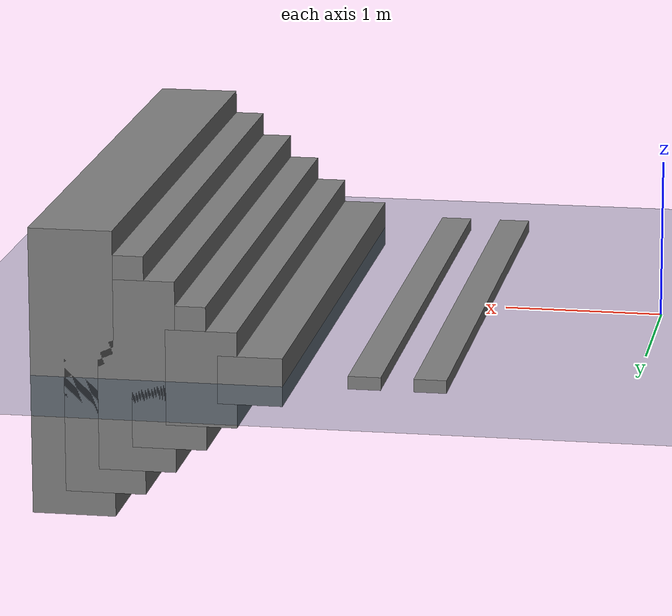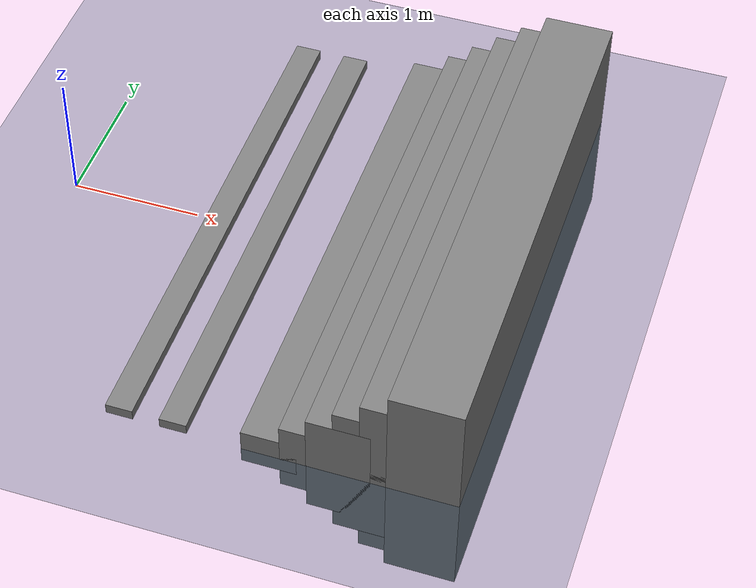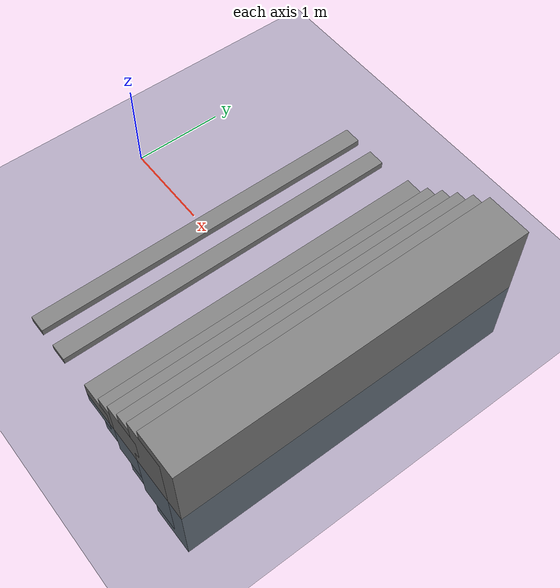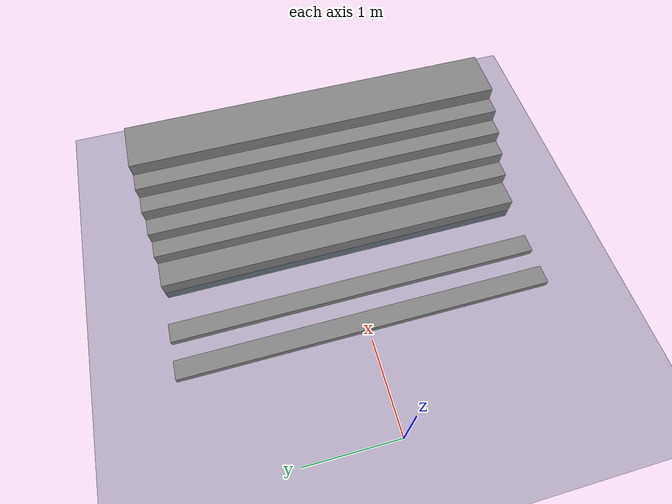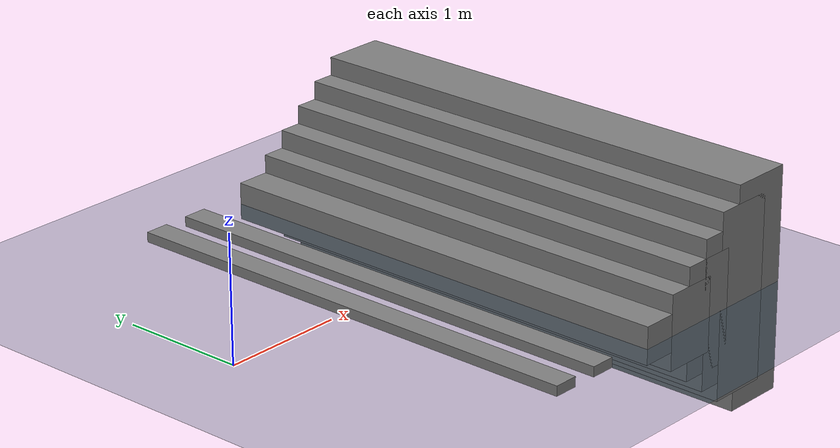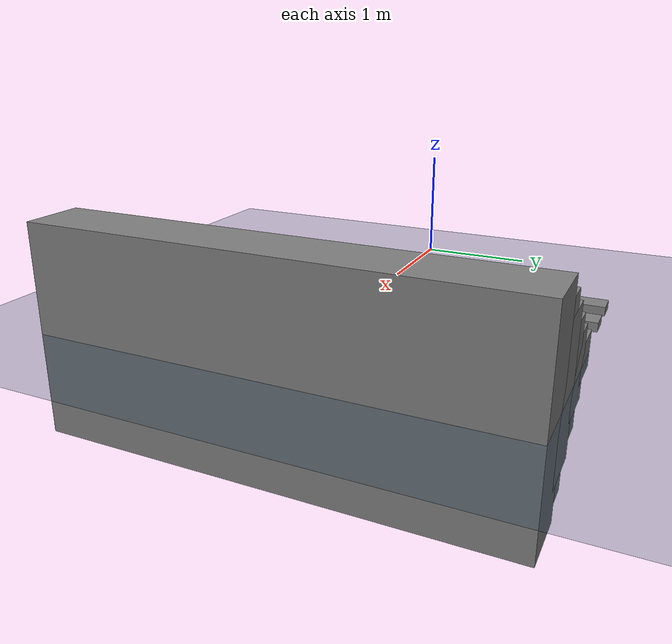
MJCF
<?xml version="1.0" encoding="utf-8"?>
<mujoco model="environment_arm">

    <!-- Statistics -->
    <statistic center="0 0 0.1" extent="0.8"/>

    <!-- Visual settings -->
    <visual>
        <headlight diffuse="0.6 0.6 0.6" ambient="0.3 0.3 0.3" specular="0 0 0"/>
        <rgba haze="0.15 0.25 0.35 1"/>
        <global azimuth="-130" elevation="-20"/>
    </visual>

    <!-- Assets -->
    <asset>
        <texture type="skybox" builtin="gradient" rgb1="0.3 0.5 0.7" rgb2="0 0 0" width="512" height="3072"/>
        <texture type="2d" name="groundplane" builtin="checker" mark="edge" rgb1="0.2 0.3 0.4" rgb2="0.1 0.2 0.3"
            markrgb="0.8 0.8 0.8" width="300" height="300"/>
        <material name="groundplane" texture="groundplane" texuniform="true" texrepeat="5 5" reflectance="0.2"/>
    </asset>

    <!-- Worldbody -->
    <worldbody>
        <!-- Lighting -->
        <light pos="0 0 1.5" dir="0 0 -1" directional="true"/>

        <!-- Ground -->
        <geom name="floor" size="0 0 0.05" type="plane" material="groundplane"/>

        <!-- Obstacles -->
        <geom pos="1.2 0 0.04" type="box" size="0.1 2 0.04" quat="1.0 0 0 0"/>
        <geom pos="1.6 0 0.04" type="box" size="0.1 2 0.04" quat="1.0 0 0 0"/>
        <geom pos="2.3 0 0.02" type="box" size="0.2 2 0.15" quat="1.0 0 0 0"/>
        <geom pos="2.6 0 0.02" type="box" size="0.22 2 0.3" quat="1.0 0 0 0"/>
        <geom pos="2.8 0 0.02" type="box" size="0.23 2 0.45" quat="1.0 0 0 0"/>
        <geom pos="3.0 0 0.02" type="box" size="0.24 2 0.6" quat="1.0 0 0 0"/>
        <geom pos="3.2 0 0.02" type="box" size="0.25 2 0.75" quat="1.0 0 0 0"/>
        <geom pos="3.4 0 0.02" type="box" size="0.26 2 0.9" quat="1.0 0 0 0"/>
    </worldbody>
</mujoco>
